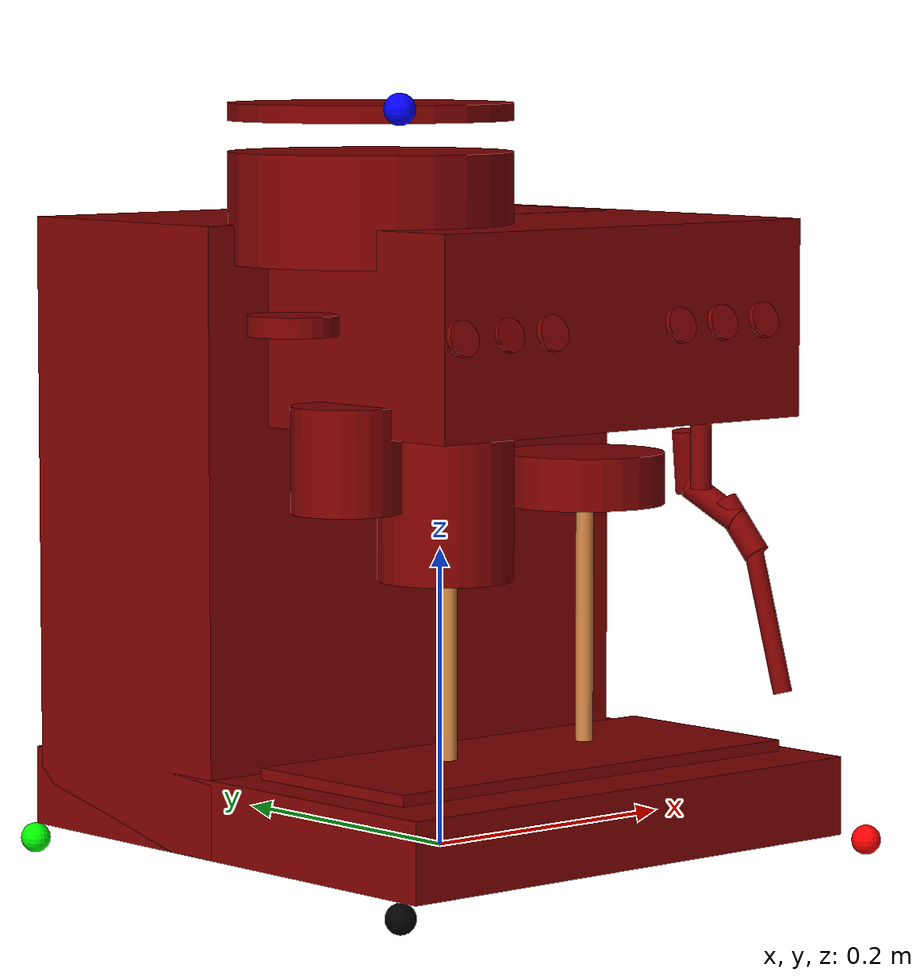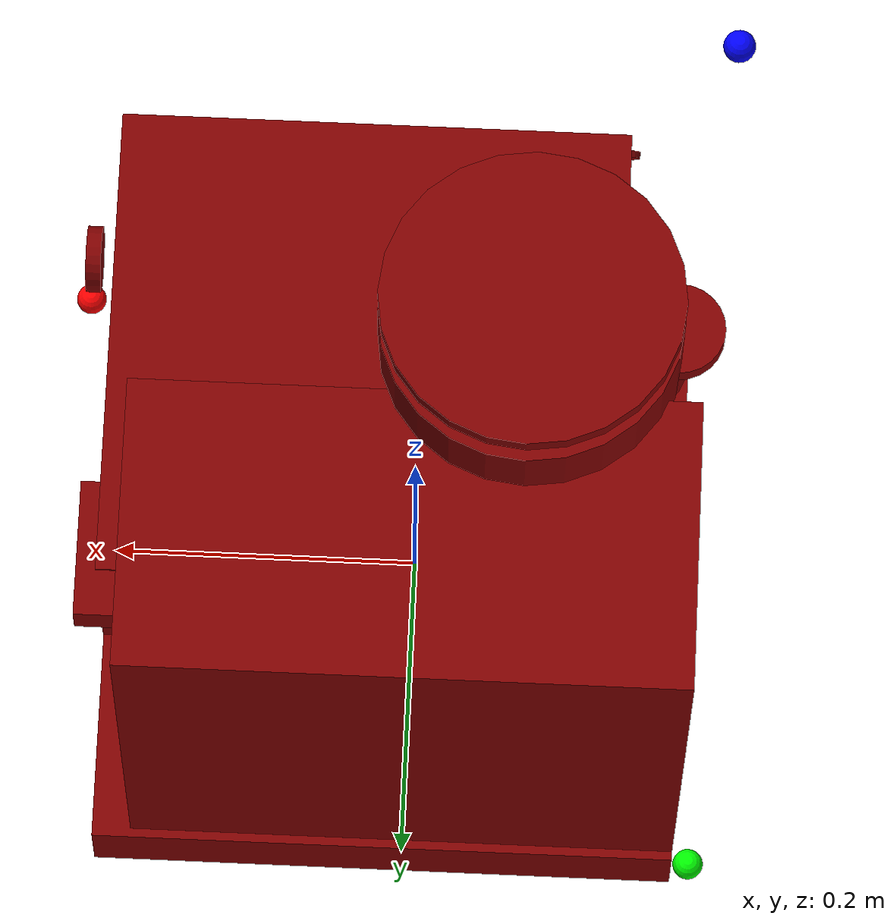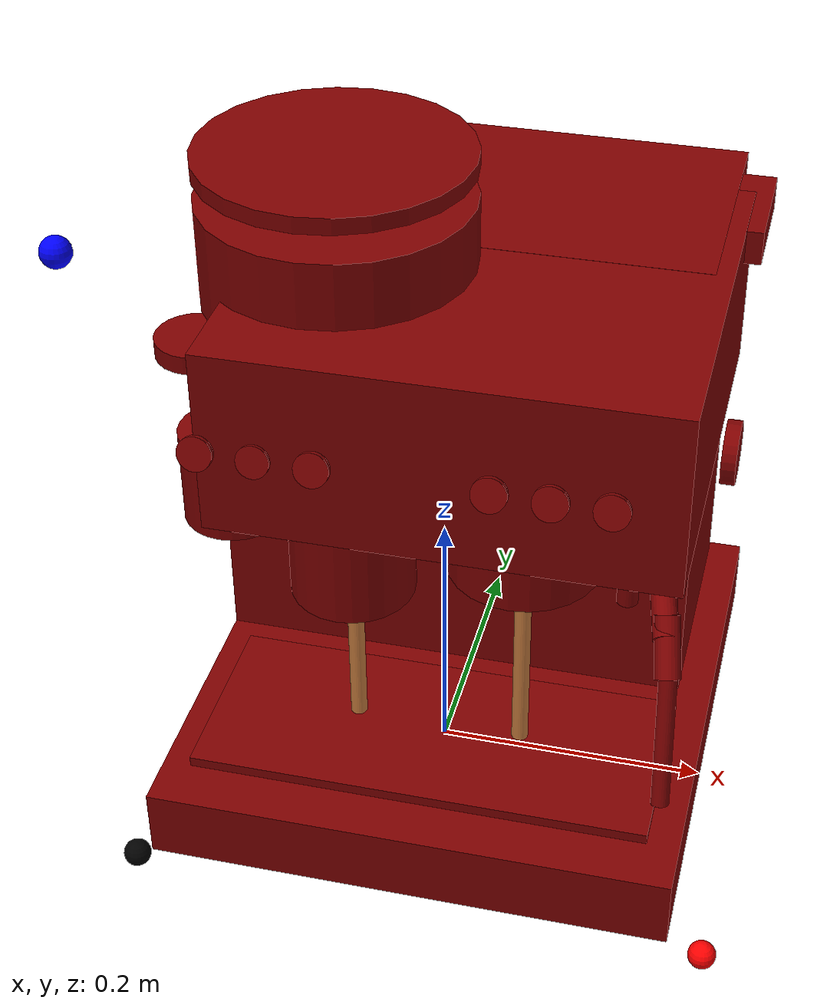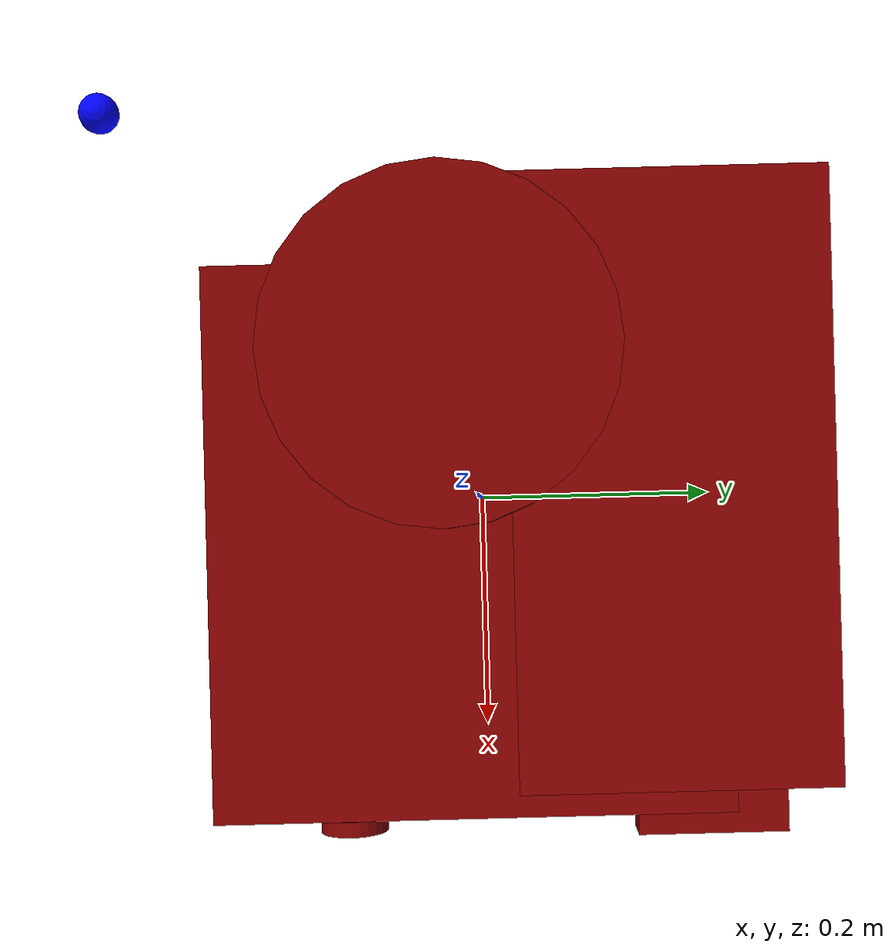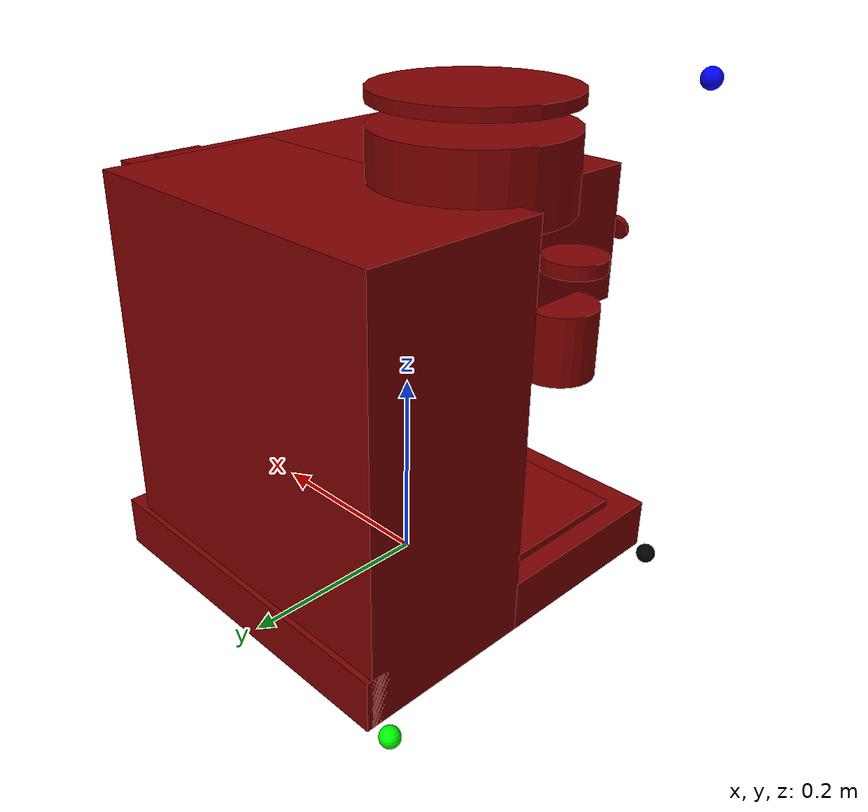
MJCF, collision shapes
<?xml version='1.0' encoding='utf-8'?>
<mujoco model="model">
    <compiler angle="radian" />
    <asset>
        <mesh file="visuals/CoffeeMachine037_Button006.obj" name="CoffeeMachine037_Button6_vis" />
        <mesh file="visuals/CoffeeMachine037_Handle001.obj" name="CoffeeMachine037_Handle_vis" />
        <mesh file="visuals/CoffeeMachine037_Button004.obj" name="CoffeeMachine037_Button4_vis" />
        <mesh file="visuals/CoffeeMachine037_Lid002.obj" name="CoffeeMachine037_Lid2_vis" />
        <mesh file="visuals/CoffeeMachine037_Lid003.obj" name="CoffeeMachine037_Lid3_vis" />
        <mesh file="visuals/CoffeeMachine037_Knob003.obj" name="CoffeeMachine037_Knob3_vis" />
        <mesh file="visuals/CoffeeMachine037_Knob002.obj" name="CoffeeMachine037_Knob2_vis" />
        <mesh file="visuals/CoffeeMachine037_Button003.obj" name="CoffeeMachine037_Button3_vis" />
        <mesh file="visuals/CoffeeMachine037_Body001.obj" name="CoffeeMachine037_Body_vis" />
        <mesh file="visuals/CoffeeMachine037_Button005.obj" name="CoffeeMachine037_Button5_vis" />
        <mesh file="visuals/CoffeeMachine037_Lid001.obj" name="CoffeeMachine037_Lid1_vis" />
        <mesh file="visuals/CoffeeMachine037_Button001.obj" name="CoffeeMachine037_Button1_vis" />
        <mesh file="visuals/CoffeeMachine037_Button002.obj" name="CoffeeMachine037_Button2_vis" />
        <texture file="visuals/T_CoffeeMachine037_BC001.png" name="T_CoffeeMachine037_BaseColor" type="2d" />
        <material name="material" rgba="1 1 1 1" texture="T_CoffeeMachine037_BaseColor" />
    </asset>
    <default>
        <default class="visual">
            <geom conaffinity="0" contype="0" group="1" type="mesh" />
        </default>
        <default class="collision">
            <geom group="0" rgba="0.5 0 0 0.5" />
        </default>
    </default>
    <worldbody>
        <body>
            <site rgba="0 0 0 1" size="0.01" pos="-0.18890488520264626 -0.17804184928536415 0" name="ext_p0" />
            <site rgba="1 0 0 1" size="0.01" pos="0.22668686136603355 -0.17804184928536415 0" name="ext_px" />
            <site rgba="0 1 0 1" size="0.01" pos="-0.18890488520264626 0.20051636919379234 0" name="ext_py" />
            <site rgba="0 0 1 1" size="0.01" pos="-0.18890488520264626 -0.17804184928536415 0.49858927726745605" name="ext_pz" />
            <body name="object">
                <geom mesh="CoffeeMachine037_Body_vis" type="mesh" solimp="0.998 0.998 0.001" solref="0.001 1" density="100" friction="0.95 0.3 0.1" class="visual" material="material" />
                <geom class="collision" type="box" pos="-7.450580596923828e-09 0.11712385714054108 0.21331138908863068" size="0.09200504422187805 0.17657111585140228 0.20646260678768158" quat="0.7071067094802856 -5.760115939779098e-08 5.7601170055932016e-08 -0.7071068286895752" />
                <geom class="collision" type="cylinder" pos="-0.06915999948978424 -0.010071039199829102 0.43034154176712036" size="0.09377652406692505 0.03622247278690338" quat="0.7071067094802856 -5.760115939779098e-08 5.7601170055932016e-08 -0.7071068286895752" />
                <geom class="collision" type="box" pos="0.031026393175125122 0.0001581236720085144 0.3535173833370209" size="0.06613679230213165 0.15795257687568665 0.14841333031654358" quat="0.5000000596046448 0.5 0.5 -0.4999999701976776" />
                <geom class="collision" type="cylinder" pos="0.07184287160634995 -0.06307458132505417 0.24776992201805115" size="0.05423872172832489 0.017365753650665283" quat="0.7071067094802856 -5.760115939779098e-08 5.7601170055932016e-08 -0.7071068286895752" />
                <geom class="collision" type="box" pos="0.012509552761912346 0.018315693363547325 0.03299838304519653" size="0.026515210047364235 0.18908068537712097 0.1965922713279724" quat="0.5000000596046448 0.5 0.5 -0.4999999701976776" />
                <geom class="collision" type="cylinder" pos="0.14796237647533417 -0.09701526165008545 0.26734375953674316" size="0.007268548011779785 0.029782891273498535" quat="0.7071067094802856 -5.760115939779098e-08 5.7601170055932016e-08 -0.7071068286895752" />
                <geom class="collision" type="cylinder" pos="-0.05092264711856842 -0.06307457387447357 0.250214546918869" size="0.04452543705701828 0.06124719977378845" quat="0.7071067094802856 -5.760115939779098e-08 5.7601170055932016e-08 -0.7071068286895752" />
                <geom class="collision" type="cylinder" pos="-0.13530653715133667 -0.06307458877563477 0.27326783537864685" size="0.03567936271429062 0.03428999334573746" quat="0.7071067094802856 -5.760115939779098e-08 5.7601170055932016e-08 -0.7071068286895752" />
                <geom class="collision" name="start_button" type="cylinder" pos="-0.12183962762355804 -0.1601928323507309 0.3548138737678528" size="0.011778442189097404 0.002037472790107131" quat="0.42773404717445374 -0.5630662441253662 -0.5630661249160767 -0.4277341365814209" />
                <body name="CoffeeMachine037_Button1">
                    <joint axis="0 1 0" pos="-0.121754951775074 -0.1594868153333664 0.35501518845558167" limited="true" name="CoffeeMachine037_Button1_joint" range="0.0 0.003" type="slide" damping="2" frictionloss="2" armature=".01" />
                    <geom mesh="CoffeeMachine037_Button1_vis" type="mesh" solimp="0.998 0.998 0.001" solref="0.001 1" density="100" friction="0.95 0.3 0.1" class="visual" material="material" />
                    <geom class="collision" type="cylinder" pos="-0.12183962762355804 -0.1601928323507309 0.3548138737678528" size="0.011778442189097404 0.002037472790107131" quat="0.42773404717445374 -0.5630662441253662 -0.5630661249160767 -0.4277341365814209" />
                </body>
                <body name="CoffeeMachine037_Button2">
                    <joint axis="0 1 0" pos="-0.045459531247615814 -0.159552663564682 0.3550325334072113" limited="true" name="CoffeeMachine037_Button2_joint" range="0.0 0.003" type="slide" damping="2" frictionloss="2" armature=".01" />
                    <geom mesh="CoffeeMachine037_Button2_vis" type="mesh" solimp="0.998 0.998 0.001" solref="0.001 1" density="100" friction="0.95 0.3 0.1" class="visual" material="material" />
                    <geom class="collision" type="cylinder" pos="-0.04571245610713959 -0.1601928323507309 0.3548138737678528" size="0.011778442189097404 0.002037472790107131" quat="0.42773404717445374 -0.5630662441253662 -0.5630661249160767 -0.4277341365814209" />
                </body>
                <body name="CoffeeMachine037_Button3">
                    <joint axis="0 1 0" pos="0.06703980267047882 -0.15954218804836273 0.35501620173454285" limited="true" name="CoffeeMachine037_Button3_joint" range="0.0 0.003" type="slide" damping="2" frictionloss="2" armature=".01" />
                    <geom mesh="CoffeeMachine037_Button3_vis" type="mesh" solimp="0.998 0.998 0.001" solref="0.001 1" density="100" friction="0.95 0.3 0.1" class="visual" material="material" />
                    <geom class="collision" type="cylinder" pos="0.06705833226442337 -0.1601928323507309 0.3548138737678528" size="0.011778442189097404 0.002037472790107131" quat="0.42773404717445374 -0.5630662441253662 -0.5630661249160767 -0.4277341365814209" />
                </body>
                <body name="CoffeeMachine037_Button4">
                    <joint axis="0 1 0" pos="0.10518711060285568 -0.1599181443452835 0.3551241159439087" limited="true" name="CoffeeMachine037_Button4_joint" range="0.0 0.003" type="slide" damping="2" frictionloss="2" armature=".01" />
                    <geom mesh="CoffeeMachine037_Button4_vis" type="mesh" solimp="0.998 0.998 0.001" solref="0.001 1" density="100" friction="0.95 0.3 0.1" class="visual" material="material" />
                    <geom class="collision" type="cylinder" pos="0.105195552110672 -0.1601928472518921 0.3548138737678528" size="0.011778442189097404 0.002037472790107131" quat="0.42773404717445374 -0.5630662441253662 -0.5630661249160767 -0.4277341365814209" />
                </body>
                <body name="CoffeeMachine037_Button5">
                    <joint axis="0 1 0" pos="0.14333473145961761 -0.1594523936510086 0.3549923300743103" limited="true" name="CoffeeMachine037_Button5_joint" range="0.0 0.003" type="slide" damping="2" frictionloss="2" armature=".01" />
                    <geom mesh="CoffeeMachine037_Button5_vis" type="mesh" solimp="0.998 0.998 0.001" solref="0.001 1" density="100" friction="0.95 0.3 0.1" class="visual" material="material" />
                    <geom class="collision" type="cylinder" pos="0.14318105578422546 -0.1601928174495697 0.3548138737678528" size="0.011778442189097404 0.002037472790107131" quat="0.42773404717445374 -0.5630662441253662 -0.5630661249160767 -0.4277341365814209" />
                </body>
                <body name="CoffeeMachine037_Button6">
                    <joint axis="0 1 0" pos="-0.08348812162876129 -0.159552663564682 0.3550325334072113" limited="true" name="CoffeeMachine037_Button6_joint" range="0.0 0.003" type="slide" damping="2" frictionloss="2" armature=".01" />
                    <geom mesh="CoffeeMachine037_Button6_vis" type="mesh" solimp="0.998 0.998 0.001" solref="0.001 1" density="100" friction="0.95 0.3 0.1" class="visual" material="material" />
                    <geom class="collision" type="cylinder" pos="-0.0835803747177124 -0.16129954159259796 0.3554060161113739" size="0.011169712990522385 0.0014693646226078272" quat="0.5557887554168701 0.43714845180511475 0.43714839220046997 -0.5557889342308044" />
                </body>
                <body name="CoffeeMachine037_Handle">
                    <joint axis="0 0 1" pos="0.16479890048503876 -0.06342162191867828 0.27622392773628235" limited="true" name="CoffeeMachine037_Handle_joint" range="0.0 1.0471975511965976" type="hinge" damping="2" frictionloss="2" armature=".01" />
                    <geom mesh="CoffeeMachine037_Handle_vis" type="mesh" solimp="0.998 0.998 0.001" solref="0.001 1" density="100" friction="0.95 0.3 0.1" class="visual" material="material" />
                    <geom class="collision" type="cylinder" pos="0.1828216314315796 -0.1268005669116974 0.14805251359939575" size="0.006428241264075041 0.04978618770837784" quat="0.9825748205184937 -0.12227720767259598 -0.03747636452317238 -0.13487234711647034" />
                    <geom class="collision" type="cylinder" pos="0.17789243161678314 -0.10504312813282013 0.20977893471717834" size="0.00897189974784851 0.02144424058496952" quat="0.9353113770484924 -0.28616076707839966 -0.12760470807552338 -0.1643826961517334" />
                    <geom class="collision" type="cylinder" pos="0.1719030886888504 -0.08570639789104462 0.22503095865249634" size="0.00897189974784851 0.02144424244761467" quat="0.8464418649673462 -0.44503793120384216 -0.22242693603038788 -0.1897464543581009" />
                    <geom class="collision" type="cylinder" pos="0.1659342497587204 -0.06512872129678726 0.2525010108947754" size="0.008971898816525936 0.02144423872232437" quat="0.9767652750015259 0.026906557381153107 -0.05555149167776108 -0.2052306979894638" />
                </body>
                <body name="CoffeeMachine037_Knob2">
                    <joint axis="0 0 1" pos="-0.159284770488739 -0.041792869567871094 0.35908013582229614" limited="false" name="CoffeeMachine037_Knob2_joint" range="0 360" type="hinge" damping="2" frictionloss="2" armature=".01" />
                    <geom mesh="CoffeeMachine037_Knob2_vis" type="mesh" solimp="0.998 0.998 0.001" solref="0.001 1" density="100" friction="0.95 0.3 0.1" class="visual" material="material" />
                    <geom class="collision" type="cylinder" pos="-0.16127806901931763 -0.04199129343032837 0.3590303957462311" size="0.02945457212626934 0.006591290235519409" quat="0.7071067094802856 -5.760115939779098e-08 5.7601170055932016e-08 -0.7071068286895752" />
                </body>
                <body name="CoffeeMachine037_Knob3">
                    <joint axis="-1 0 0" pos="0.19350193440914154 -0.0772206038236618 0.35277944803237915" limited="true" name="CoffeeMachine037_Knob3_joint" range="0.0 4.1887902047863905" type="hinge" damping="2" frictionloss="2" armature=".01" />
                    <geom mesh="CoffeeMachine037_Knob3_vis" type="mesh" solimp="0.998 0.998 0.001" solref="0.001 1" density="100" friction="0.95 0.3 0.1" class="visual" material="material" />
                    <geom class="collision" type="cylinder" pos="0.20478256046772003 -0.07647667825222015 0.35225680470466614" size="0.02072836644947529 0.004638552665710449" quat="0.49999943375587463 -0.5000000596046448 0.500000536441803 -0.4999999403953552" />
                </body>
                <body name="CoffeeMachine037_Lid1">
                    <joint axis="0 0 1" pos="-0.06929945200681686 -0.009897475130856037 0.4772985577583313" limited="true" name="CoffeeMachine037_Lid1_joint" range="0.0 0.02" type="slide" damping="2" frictionloss="2" armature=".01" />
                    <geom mesh="CoffeeMachine037_Lid1_vis" type="mesh" solimp="0.998 0.998 0.001" solref="0.001 1" density="100" friction="0.95 0.3 0.1" class="visual" material="material" />
                    <geom class="collision" type="cylinder" pos="-0.06915998458862305 -0.010071039199829102 0.492418497800827" size="0.09377652406692505 0.005735293030738831" quat="0.7071067094802856 -5.760115939779098e-08 5.7601170055932016e-08 -0.7071068286895752" />
                </body>
                <body name="CoffeeMachine037_Lid2">
                    <joint axis="0 0 1" pos="7.2254326966003646e-09 -0.0748363509774208 0.06472651660442352" limited="true" name="CoffeeMachine037_Lid2_joint" range="0.0 0.02" type="slide" damping="2" frictionloss="2" armature=".01" />
                    <geom mesh="CoffeeMachine037_Lid2_vis" type="mesh" solimp="0.998 0.998 0.001" solref="0.001 1" density="100" friction="0.95 0.3 0.1" class="visual" material="material" />
                    <geom class="collision" type="box" pos="0.0114322230219841 -0.07151975482702255 0.06525687873363495" size="0.003789817914366722 0.16714586317539215 0.0705186054110527" quat="0.5000000596046448 0.5 0.5 -0.4999999701976776" />
                </body>
                <body name="CoffeeMachine037_Lid3">
                    <joint axis="1 0 0" pos="0.012021987698972225 0.09259312599897385 0.41278892755508423" limited="true" name="CoffeeMachine037_Lid3_joint" range="0.0 1.5707963267948966" type="hinge" damping="2" frictionloss="2" armature=".01" />
                    <geom mesh="CoffeeMachine037_Lid3_vis" type="mesh" solimp="0.998 0.998 0.001" solref="0.001 1" density="100" friction="0.95 0.3 0.1" class="visual" material="material" />
                    <geom class="collision" type="box" pos="0.015755614265799522 0.1347399801015854 0.4057602286338806" size="0.185106456 0.042519983 0.01225509" quat="1.0 0.0 0.0 0.0" />
                </body>
                <site rgba="0 0 0 0" size="0.01" pos="-0.0497917 -0.0641573 0.070714" name="receptacle_place_site" />
                <site rgba="0.8 0.5 0.25 1" size="0.006 0.08" pos="-0.0497917 -0.0641573 0.150714" type="cylinder" name="coffee_liquid_left" />
                <site rgba="0.8 0.5 0.25 1" size="0.006 0.08" pos="0.0719176 -0.0641573 0.150714" type="cylinder" name="coffee_liquid_right" />

            </body>
        </body>
    </worldbody>
</mujoco>
